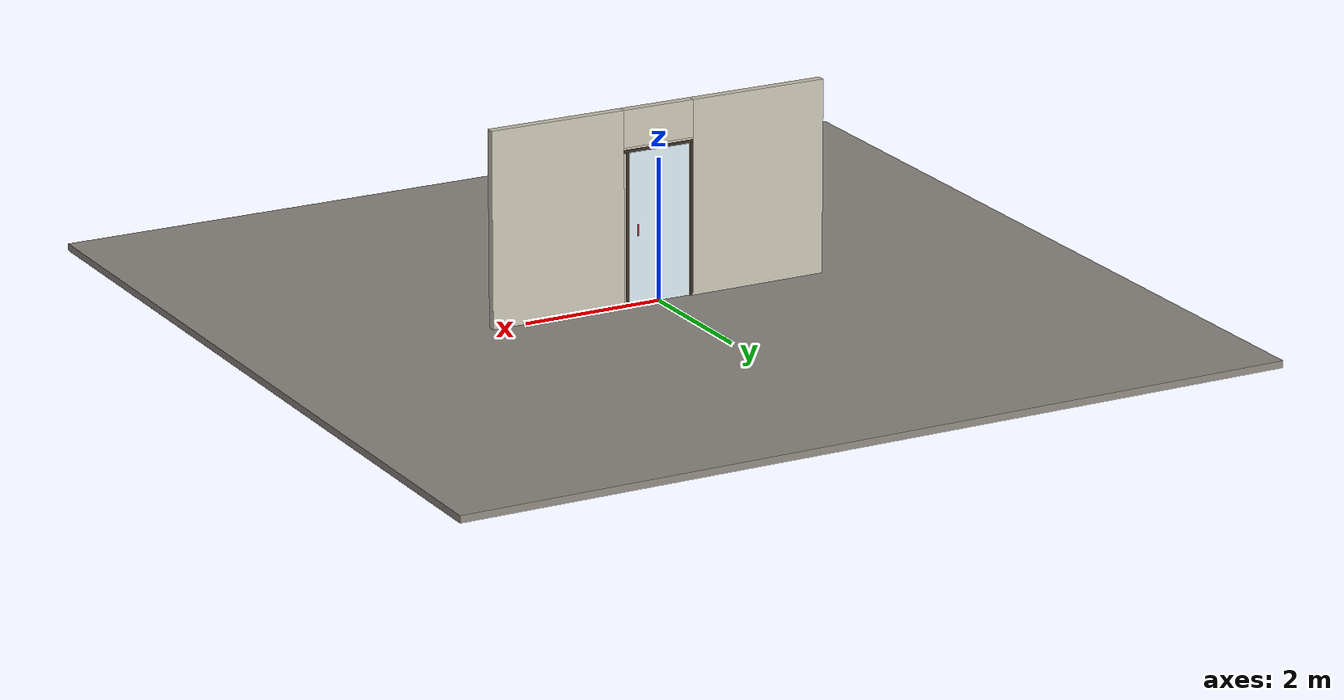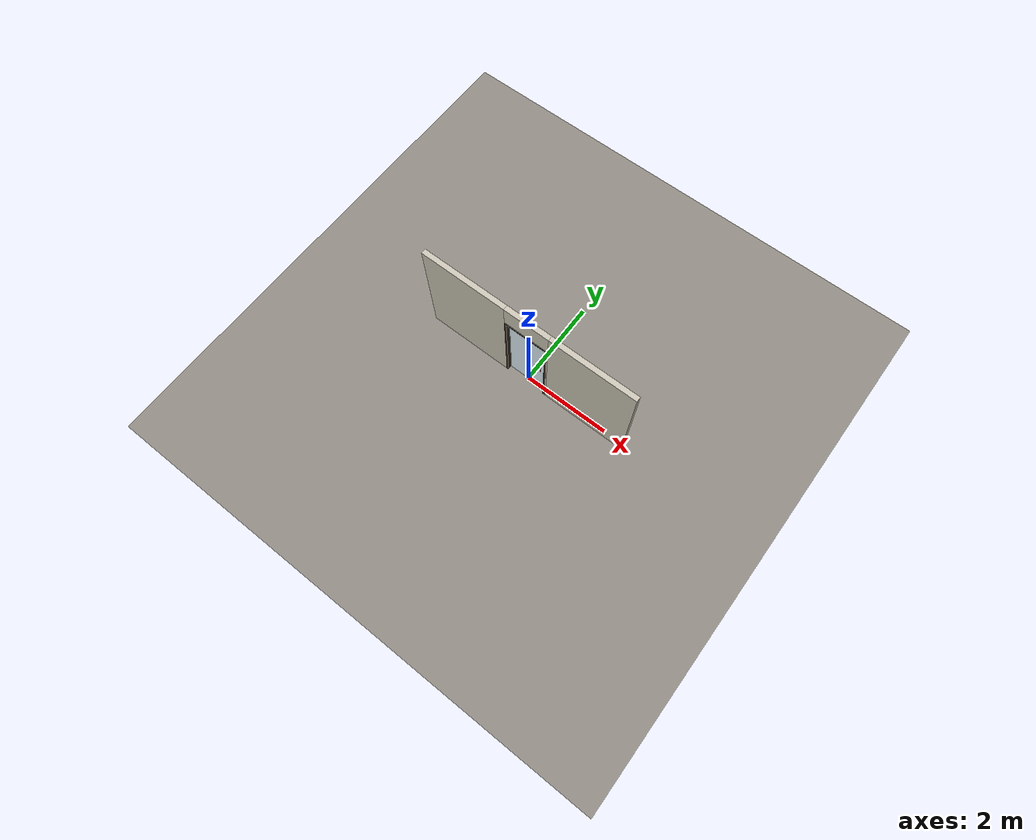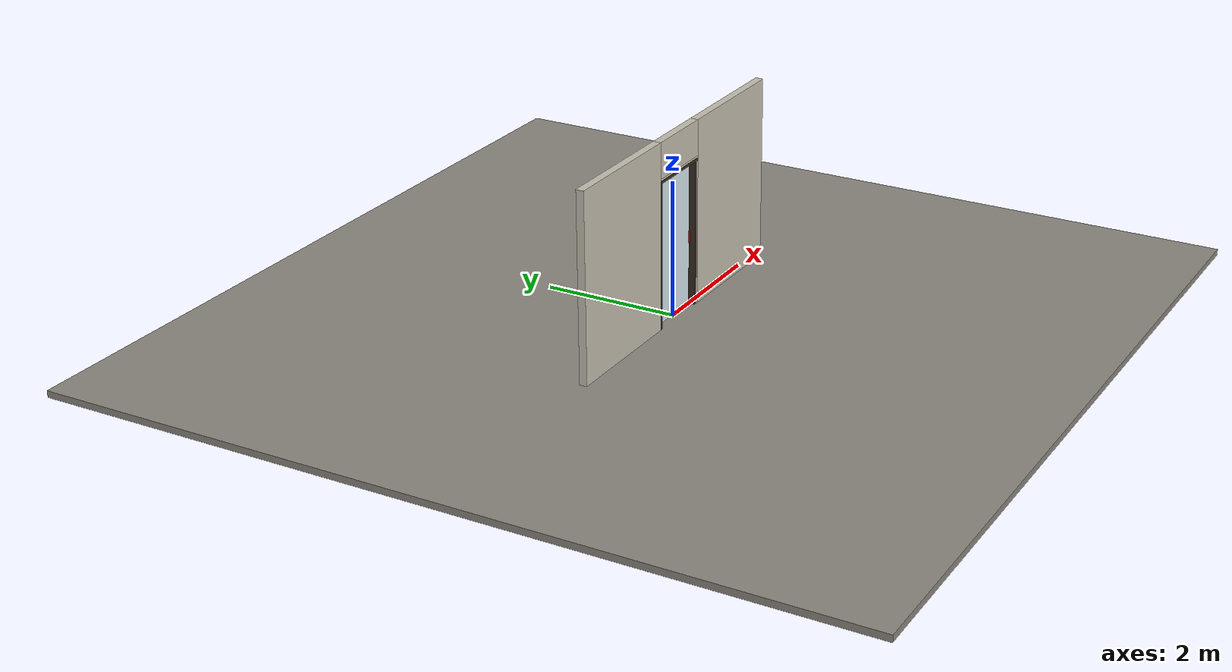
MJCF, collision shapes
<?xml version="1.0" ?>
<mujoco model="db0712_swing_single_minimal">
  <compiler angle="radian" meshdir="../../hardware" texturedir="../../textures" autolimits="true" inertiafromgeom="false"/>
  <option timestep="0.002" integrator="implicitfast" cone="elliptic" impratio="10" noslip_iterations="3">
    <flag multiccd="enable"/>
  </option>
  <size memory="16M"/>
  <default>
    <geom condim="4" solref="0.005 1" solimp="0.95 0.99 0.001"/>
    <joint solreflimit="0.005 1" solimplimit="0.95 0.99 0.001"/>
    <tendon solreflimit="0.005 1"/>
    <equality solref="0.002 1"/>
  </default>
  <visual>
    <headlight ambient="0.4 0.4 0.4" diffuse="0.7 0.7 0.7" specular="0.2 0.2 0.2"/>
    <quality shadowsize="4096"/>
    <map znear="0.01" zfar="60"/>
  </visual>
  <asset>
    <mesh name="pull_1e5d69a91a" file="pull_1e5d69a91a.obj"/>
    <material name="mat_floor" rgba="0.55 0.53 0.5 1" specular="0.2" shininess="0.15" reflectance="0"/>
    <material name="mat_wall" rgba="0.78 0.76 0.7 1" specular="0.2" shininess="0.1" reflectance="0"/>
    <material name="mat_leaf" rgba="0.85 0.92 0.95 0.25" specular="0.2" shininess="0.95" reflectance="0.1"/>
    <material name="mat_glass_leaf" rgba="0.85 0.92 0.95 0.25" specular="0.2" shininess="0.95" reflectance="0.1"/>
    <material name="mat_patch" rgba="0.75 0.76 0.77 1" specular="0.8" shininess="0.65" reflectance="0.4"/>
    <material name="mat_hinge" rgba="0.65 0.66 0.68 1" specular="0.74" shininess="0.5" reflectance="0.36"/>
    <material name="mat_op_stainless" rgba="0.75 0.76 0.77 1" specular="0.8" shininess="0.65" reflectance="0.4"/>
    <material name="mat_frame" rgba="0.22 0.17 0.13 1" specular="0.8" shininess="0.6" reflectance="0.4"/>
    <material name="mat_closer" rgba="0.22 0.17 0.13 1" specular="0.8" shininess="0.6" reflectance="0.4"/>
    <material name="mat_sign" rgba="0.75 0.76 0.77 1" specular="0.8" shininess="0.65" reflectance="0.4"/>
    <texture name="skybox" type="skybox" builtin="gradient" rgb1="0.6 0.7 0.85" rgb2="0.9 0.92 0.95" width="256" height="256"/>
  </asset>
  <worldbody>
    <light name="sun" pos="1.5 -2.5 4" dir="-0.3 0.5 -0.8" directional="true" diffuse="0.8 0.8 0.8" specular="0.3 0.3 0.3" castshadow="true"/>
    <light name="fill" pos="-1.5 2.5 3" dir="0.3 -0.5 -0.7" directional="true" diffuse="0.35 0.35 0.4" castshadow="false"/>
    <camera name="robot_view" pos="0 -2.682313 1.812087" xyaxes="1 0 0 0 0.26963 0.962964" fovy="52"/>
    <camera name="far_view" pos="0 2.593312 1.812087" xyaxes="-1 0 0 0 -0.26963 0.962964" fovy="52"/>
    <camera name="iso" pos="2.004737 -2.260263 2.234138" xyaxes="0.741536 0.670913 0 -0.242917 0.268487 0.932151" fovy="46"/>
    <camera name="detail_handle" pos="0.5335 -0.866 1.347" xyaxes="0.97561 0.219512 0 -0.070934 0.315262 0.94635" fovy="38"/>
    <geom name="floor" type="box" size="6 6 0.05" pos="0 0 -0.05" material="mat_floor" group="0" contype="1" conaffinity="1" friction="0.8 0.005 0.0001" density="2400"/>
    <geom name="wall_left" type="box" size="0.99675 0.0575 1.3735" pos="-1.50325 -0.0445 1.3735" material="mat_wall" group="0" contype="1" conaffinity="1" friction="0.6 0.005 0.0001" density="800"/>
    <geom name="wall_right" type="box" size="0.98175 0.0575 1.3735" pos="1.51825 -0.0445 1.3735" material="mat_wall" group="0" contype="1" conaffinity="1" friction="0.6 0.005 0.0001" density="800"/>
    <geom name="wall_header" type="box" size="0.5215 0.0575 0.2625" pos="0.015 -0.0445 2.4845" material="mat_wall" group="0" contype="1" conaffinity="1" friction="0.6 0.005 0.0001" density="800"/>
    <geom name="jamb_hinge" type="box" size="0.0225 0.0575 1.0735" pos="-0.484 -0.0445 1.0735" material="mat_frame" group="0" contype="1" conaffinity="1" friction="0.6 0.005 0.0001" density="300"/>
    <geom name="jamb_strike" type="box" size="0.0225 0.0575 1.0735" pos="0.484 -0.0445 1.0735" material="mat_frame" group="0" contype="1" conaffinity="1" friction="0.6 0.005 0.0001" density="300"/>
    <geom name="stud_strike" type="box" size="0.015 0.0575 1.0735" pos="0.5215 -0.0445 1.0735" material="mat_wall" group="0" contype="1" conaffinity="1" friction="0.6 0.005 0.0001" density="500"/>
    <geom name="jamb_head" type="box" size="0.5215 0.0575 0.0225" pos="0.015 -0.0445 2.1695" material="mat_frame" group="0" contype="1" conaffinity="1" friction="0.6 0.005 0.0001" density="300"/>
    <geom name="head_stud" type="box" size="0.5215 0.0575 0.015" pos="0.015 -0.0445 2.207" material="mat_wall" group="0" contype="1" conaffinity="1" friction="0.6 0.005 0.0001" density="500"/>
    <site name="approach_point" pos="0 -1.5 0" quat="1 0 0 0" size="0.05" rgba="0.2 0.9 0.2 0.5" group="4"/>
    <site name="goal_point" pos="0 1.5 0" quat="1 0 0 0" size="0.05" rgba="0.2 0.9 0.2 0.5" group="4"/>
    <site name="door_plane_center" pos="0 0 1.0735" quat="1 0 0 0" size="0.02" rgba="0.2 0.9 0.2 0.5" group="4"/>
    <body name="leaf" pos="-0.4615 0 0">
      <inertial pos="0.545758 0 1.073884" mass="64.466789" quat="0.500661 0.500661 0.499339 -0.499339" diaginertia="4.924280746 18.815148099 23.629978184"/>
      <joint name="leaf_hinge" type="hinge" axis="0 0 1" pos="0.003 0.013 0" limited="true" range="0 1.570796" solreflimit="0.02 1" damping="12.268966" frictionloss="1.519116" stiffness="15.342537" springref="-1.864099" armature="0.02"/>
      <geom name="leaf_glass" type="box" size="0.457 0.006 1.067" pos="0.463 0 1.076" material="mat_glass_leaf" group="0" contype="1" conaffinity="1" friction="0.4 0.005 0.0001" density="1"/>
      <geom name="leaf_pull_n" type="mesh" mesh="pull_1e5d69a91a" pos="0.815 -0.006 1.067" quat="0.707107 0.707107 0 0" material="mat_op_stainless" group="1" contype="0" conaffinity="0" density="3000"/>
      <geom name="leaf_pull_col_n" type="capsule" size="0.0095 0.08" pos="0.815 -0.066 1.067" material="mat_op_stainless" group="3" contype="1" conaffinity="1" rgba="0.8 0.3 0.3 0.25" friction="0.7 0.01 0.0001" density="3000"/>
      <geom name="leaf_pull_p" type="mesh" mesh="pull_1e5d69a91a" pos="0.815 0.006 1.067" quat="-0.707107 0.707107 0 0" material="mat_op_stainless" group="1" contype="0" conaffinity="0" density="3000"/>
      <geom name="leaf_pull_col_p" type="capsule" size="0.0095 0.08" pos="0.815 0.066 1.067" material="mat_op_stainless" group="3" contype="1" conaffinity="1" rgba="0.8 0.3 0.3 0.25" friction="0.7 0.01 0.0001" density="3000"/>
      <site name="leaf_pull_grip_n" pos="0.815 -0.066 1.067" quat="1 0 0 0" size="0.012" rgba="0.2 0.9 0.2 0.5" group="4"/>
      <site name="leaf_pull_grip_p" pos="0.815 0.066 1.067" quat="1 0 0 0" size="0.012" rgba="0.2 0.9 0.2 0.5" group="4"/>
      <site name="leaf_edge_mid" pos="0.92 0 1.067" quat="1 0 0 0" size="0.02" rgba="0.2 0.9 0.2 0.5" group="4"/>
    </body>
  </worldbody>
  <sensor>
    <jointpos name="leaf_hinge_pos" joint="leaf_hinge"/>
    <jointvel name="leaf_hinge_vel" joint="leaf_hinge"/>
  </sensor>
</mujoco>
